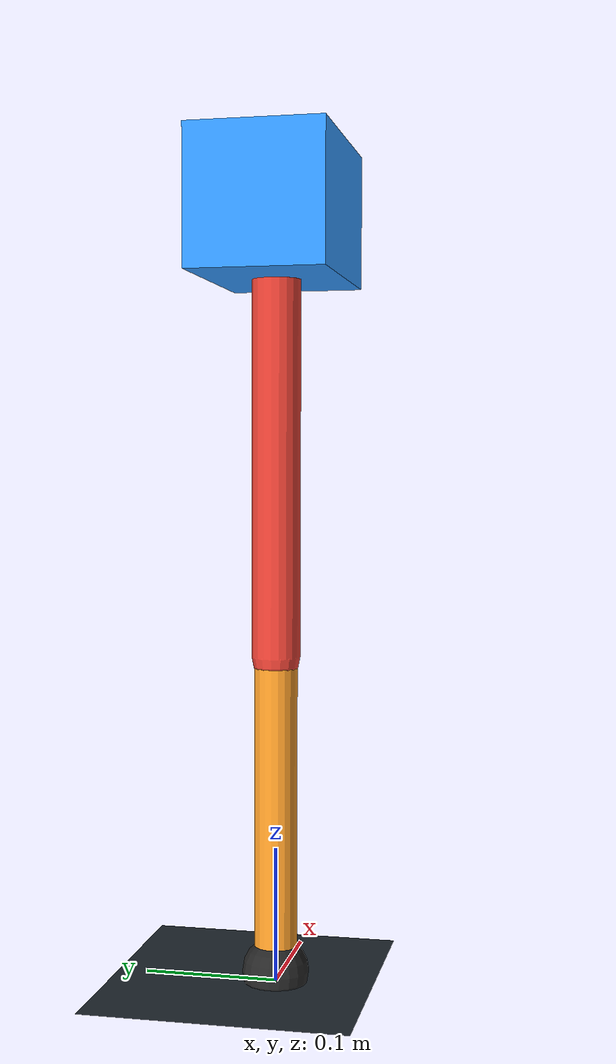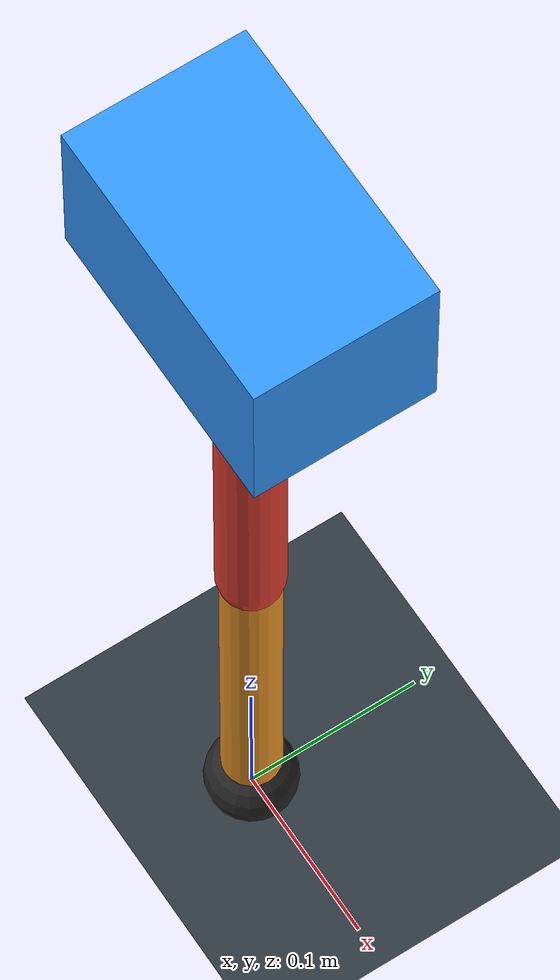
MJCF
<mujoco model="single_axis_two_bar">
  <compiler angle="radian" inertiafromgeom="true"/>
  <option timestep="0.001" integrator="implicitfast" gravity="0 0 -9.81"/>
  <default>
    <joint damping="0.08"/>
    <geom friction="1.2 0.01 0.0001" condim="3"/>
  </default>
  <worldbody>
    <geom name="floor" type="plane" size="5 5 0.1" rgba="0.18 0.22 0.25 1"/>
    <body name="carriage" pos="0 0 0.5704086123423416">
      <joint name="pole_slide" type="slide" axis="0 0 1"/>
      <geom name="payload" type="box" size="0.08 0.05 0.05" mass="2.577089100738739" rgba="0.2 0.6 1 1"/>
      <body name="thigh" pos="0 0 0">
        <joint name="hip" type="hinge" axis="0 1 0"/>
        <geom name="thigh_link" type="capsule" fromto="0 0 0 0 0 -0.32697440871595623" size="0.018" mass="0.23297358679573177" rgba="0.9 0.25 0.2 1"/>
        <body name="shank" pos="0 0 -0.32697440871595623">
          <joint name="knee" type="hinge" axis="0 1 0"/>
          <geom name="shank_link" type="capsule" fromto="0 0 0 0 0 -0.23530251122460222" size="0.016" mass="0.167656148495891" rgba="0.95 0.6 0.15 1"/>
          <geom name="foot" type="sphere" pos="0 0 -0.23530251122460222" size="0.025" mass="0.03" rgba="0.15 0.15 0.15 1"/>
          <site name="toe" pos="0 0 -0.23530251122460222" size="0.008"/>
        </body>
      </body>
    </body>
  </worldbody>
  <actuator>
    <motor name="hip_motor" joint="hip" ctrlrange="-29.265533203382123 29.265533203382123"/>
    <motor name="knee_motor" joint="knee" ctrlrange="-109.50640064542957 109.50640064542957"/>
  </actuator>
</mujoco>
